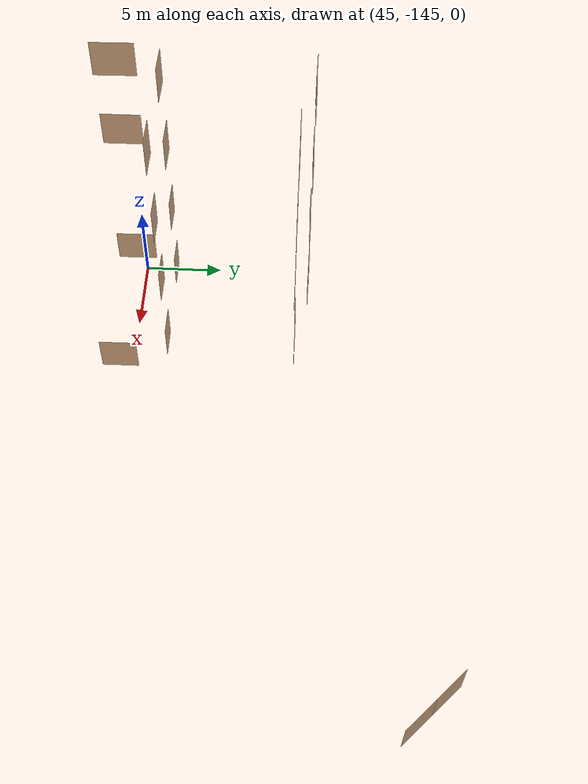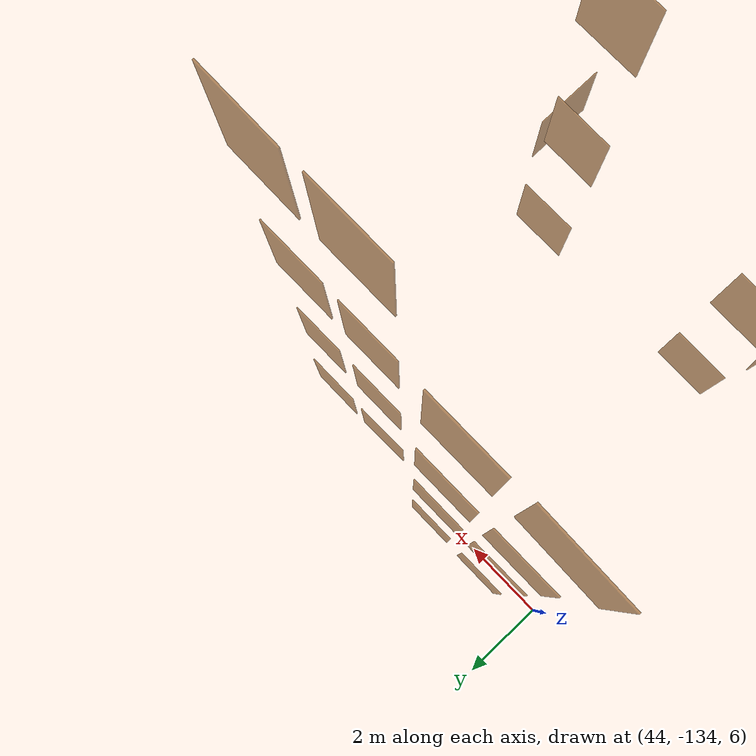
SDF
<sdf version="1.7">
 <world name="sim_world">
  <model name="puerta35">
   <pose>75.45357078933239 -127.21729013781993 0.0 0 0 -0.78246319415858</pose>
   <link name="right">
    <pose>1.1319642426576724 0 1.11 0 0 0</pose>
    <visual name="right_visual">
     <geometry><box><size>2.253928485315345 0.03 2.2</size></box></geometry>
     <material>
      <ambient>0.5 0.25 0 0.6</ambient>
      <diffuse>0.5 0.25 0 0.6</diffuse>
      <pbr><metal><metalness>0.0</metalness></metal></pbr>
     </material>
    </visual>
    <collision name="right_collision">
     <geometry><box><size>2.253928485315345 0.03 2.2</size></box></geometry>
     <surface><contact><collide_bitmask>0x02</collide_bitmask></contact></surface>
    </collision>
    <inertial>
     <mass>50.0</mass>
     <inertia><ixx>20.17041666666667</ixx><iyy>41.33414007048302</iyy><izz>21.171223403816356</izz></inertia>
    </inertial>
   </link>
   <joint name="right_joint" type="revolute">
    <parent>world</parent>
    <child>right</child>
    <axis><xyz>0 0 -1</xyz><limit><lower>0</lower><upper>1.57</upper></limit></axis>
    <pose>1.1319642426576724 0 0 0 0 0</pose>
   </joint>
   <link name="left">
    <pose>-1.1319642426576724 0 1.11 0 0 0</pose>
    <visual name="left_visual">
     <geometry><box><size>2.253928485315345 0.03 2.2</size></box></geometry>
     <material>
      <ambient>0.5 0.25 0 0.6</ambient>
      <diffuse>0.5 0.25 0 0.6</diffuse>
      <pbr><metal><metalness>0.0</metalness></metal></pbr>
     </material>
    </visual>
    <collision name="left_collision">
     <geometry><box><size>2.253928485315345 0.03 2.2</size></box></geometry>
     <surface><contact><collide_bitmask>0x02</collide_bitmask></contact></surface>
    </collision>
    <inertial>
     <mass>50.0</mass>
     <inertia><ixx>20.17041666666667</ixx><iyy>41.33414007048302</iyy><izz>21.171223403816356</izz></inertia>
    </inertial>
   </link>
   <joint name="left_joint" type="revolute">
    <parent>world</parent>
    <child>left</child>
    <axis><xyz>0 0 -1</xyz><limit><lower>-1.57</lower><upper>0</upper></limit></axis>
    <pose>-1.1319642426576724 0 0 0 0 0</pose>
   </joint>
   <plugin name="register_component" filename="libregister_component.so">
    <component name="Door">
     <v_max_door>0.5</v_max_door>
     <a_max_door>0.3</a_max_door>
     <a_nom_door>0.15</a_nom_door>
     <dx_min_door>0.01</dx_min_door>
     <f_max_door>500.0</f_max_door>
     <ros_interface>true</ros_interface>
     <door name="puerta35" type="DoubleSwingDoor" left_joint_name="left_joint" right_joint_name="right_joint"/>
    </component>
   </plugin>
  </model>
  <model name="puerta64">
   <pose>45.272078038303206 -133.9576695901199 0.0 0 0 0.00033642091717887694</pose>
   <link name="right">
    <pose>0 0 1.11 0 0 0</pose>
    <visual name="right_visual">
     <geometry><box><size>1.586098175162233 0.03 2.2</size></box></geometry>
     <material>
      <ambient>0.5 0.25 0 0.6</ambient>
      <diffuse>0.5 0.25 0 0.6</diffuse>
      <pbr><metal><metalness>0.0</metalness></metal></pbr>
     </material>
    </visual>
    <collision name="right_collision">
     <geometry><box><size>1.586098175162233 0.03 2.2</size></box></geometry>
     <surface><contact><collide_bitmask>0x02</collide_bitmask></contact></surface>
    </collision>
    <inertial>
     <mass>50.0</mass>
     <inertia><ixx>20.17041666666667</ixx><iyy>30.648780921887358</iyy><izz>10.48586425522069</izz></inertia>
    </inertial>
   </link>
   <joint name="right_joint" type="revolute">
    <parent>world</parent>
    <child>right</child>
    <axis><xyz>0 0 -1</xyz><limit><lower>0</lower><upper>1.57</upper></limit></axis>
    <pose>0.7980490875811165 0 0 0 0 0</pose>
   </joint>
   <plugin name="register_component" filename="libregister_component.so">
    <component name="Door">
     <v_max_door>0.5</v_max_door>
     <a_max_door>0.3</a_max_door>
     <a_nom_door>0.15</a_nom_door>
     <dx_min_door>0.01</dx_min_door>
     <f_max_door>500.0</f_max_door>
     <ros_interface>true</ros_interface>
     <door name="puerta64" type="SwingDoor" left_joint_name="empty_joint" right_joint_name="right_joint"/>
    </component>
   </plugin>
  </model>
  <model name="puerta65">
   <pose>47.3220690889565 -134.00293538571682 0.0 0 0 3.141592653589793</pose>
   <link name="right">
    <pose>0 0 1.11 0 0 0</pose>
    <visual name="right_visual">
     <geometry><box><size>1.5378790048326516 0.03 2.2</size></box></geometry>
     <material>
      <ambient>0.5 0.25 0 0.6</ambient>
      <diffuse>0.5 0.25 0 0.6</diffuse>
      <pbr><metal><metalness>0.0</metalness></metal></pbr>
     </material>
    </visual>
    <collision name="right_collision">
     <geometry><box><size>1.5378790048326516 0.03 2.2</size></box></geometry>
     <surface><contact><collide_bitmask>0x02</collide_bitmask></contact></surface>
    </collision>
    <inertial>
     <mass>50.0</mass>
     <inertia><ixx>20.17041666666667</ixx><iyy>30.021132639604453</iyy><izz>9.85821597293778</izz></inertia>
    </inertial>
   </link>
   <joint name="right_joint" type="revolute">
    <parent>world</parent>
    <child>right</child>
    <axis><xyz>0 0 1</xyz><limit><lower>0</lower><upper>1.57</upper></limit></axis>
    <pose>0.7739395024163258 0 0 0 0 0</pose>
   </joint>
   <plugin name="register_component" filename="libregister_component.so">
    <component name="Door">
     <v_max_door>0.5</v_max_door>
     <a_max_door>0.3</a_max_door>
     <a_nom_door>0.15</a_nom_door>
     <dx_min_door>0.01</dx_min_door>
     <f_max_door>500.0</f_max_door>
     <ros_interface>true</ros_interface>
     <door name="puerta65" type="SwingDoor" left_joint_name="empty_joint" right_joint_name="right_joint"/>
    </component>
   </plugin>
  </model>
  <model name="puerta66">
   <pose>50.14669769106855 -134.76991229640237 0.0 0 0 0.016072215014204645</pose>
   <link name="right">
    <pose>0 0 1.11 0 0 0</pose>
    <visual name="right_visual">
     <geometry><box><size>1.698400351786049 0.03 2.2</size></box></geometry>
     <material>
      <ambient>0.5 0.25 0 0.6</ambient>
      <diffuse>0.5 0.25 0 0.6</diffuse>
      <pbr><metal><metalness>0.0</metalness></metal></pbr>
     </material>
    </visual>
    <collision name="right_collision">
     <geometry><box><size>1.698400351786049 0.03 2.2</size></box></geometry>
     <surface><contact><collide_bitmask>0x02</collide_bitmask></contact></surface>
    </collision>
    <inertial>
     <mass>50.0</mass>
     <inertia><ixx>20.17041666666667</ixx><iyy>32.18568231227907</iyy><izz>12.022765645612397</izz></inertia>
    </inertial>
   </link>
   <joint name="right_joint" type="revolute">
    <parent>world</parent>
    <child>right</child>
    <axis><xyz>0 0 -1</xyz><limit><lower>0</lower><upper>1.57</upper></limit></axis>
    <pose>0.8542001758930245 0 0 0 0 0</pose>
   </joint>
   <plugin name="register_component" filename="libregister_component.so">
    <component name="Door">
     <v_max_door>0.5</v_max_door>
     <a_max_door>0.3</a_max_door>
     <a_nom_door>0.15</a_nom_door>
     <dx_min_door>0.01</dx_min_door>
     <f_max_door>500.0</f_max_door>
     <ros_interface>true</ros_interface>
     <door name="puerta66" type="SwingDoor" left_joint_name="empty_joint" right_joint_name="right_joint"/>
    </component>
   </plugin>
  </model>
  <model name="puerta67">
   <pose>52.17614104170396 -134.76599248254877 0.0 0 0 3.1392222238091176</pose>
   <link name="right">
    <pose>0 0 1.11 0 0 0</pose>
    <visual name="right_visual">
     <geometry><box><size>1.651182401063152 0.03 2.2</size></box></geometry>
     <material>
      <ambient>0.5 0.25 0 0.6</ambient>
      <diffuse>0.5 0.25 0 0.6</diffuse>
      <pbr><metal><metalness>0.0</metalness></metal></pbr>
     </material>
    </visual>
    <collision name="right_collision">
     <geometry><box><size>1.651182401063152 0.03 2.2</size></box></geometry>
     <surface><contact><collide_bitmask>0x02</collide_bitmask></contact></surface>
    </collision>
    <inertial>
     <mass>50.0</mass>
     <inertia><ixx>20.17041666666667</ixx><iyy>31.526680506586153</iyy><izz>11.363763839919484</izz></inertia>
    </inertial>
   </link>
   <joint name="right_joint" type="revolute">
    <parent>world</parent>
    <child>right</child>
    <axis><xyz>0 0 1</xyz><limit><lower>0</lower><upper>1.57</upper></limit></axis>
    <pose>0.830591200531576 0 0 0 0 0</pose>
   </joint>
   <plugin name="register_component" filename="libregister_component.so">
    <component name="Door">
     <v_max_door>0.5</v_max_door>
     <a_max_door>0.3</a_max_door>
     <a_nom_door>0.15</a_nom_door>
     <dx_min_door>0.01</dx_min_door>
     <f_max_door>500.0</f_max_door>
     <ros_interface>true</ros_interface>
     <door name="puerta67" type="SwingDoor" left_joint_name="empty_joint" right_joint_name="right_joint"/>
    </component>
   </plugin>
  </model>
  <model name="puerta68">
   <pose>45.33858958296044 -142.92470019688562 0.0 0 0 3.1356292719977623</pose>
   <link name="right">
    <pose>0 0 1.11 0 0 0</pose>
    <visual name="right_visual">
     <geometry><box><size>1.8569027137492566 0.03 2.2</size></box></geometry>
     <material>
      <ambient>0.5 0.25 0 0.6</ambient>
      <diffuse>0.5 0.25 0 0.6</diffuse>
      <pbr><metal><metalness>0.0</metalness></metal></pbr>
     </material>
    </visual>
    <collision name="right_collision">
     <geometry><box><size>1.8569027137492566 0.03 2.2</size></box></geometry>
     <surface><contact><collide_bitmask>0x02</collide_bitmask></contact></surface>
    </collision>
    <inertial>
     <mass>50.0</mass>
     <inertia><ixx>20.17041666666667</ixx><iyy>34.533698701372316</iyy><izz>14.370782034705641</izz></inertia>
    </inertial>
   </link>
   <joint name="right_joint" type="revolute">
    <parent>world</parent>
    <child>right</child>
    <axis><xyz>0 0 1</xyz><limit><lower>0</lower><upper>1.57</upper></limit></axis>
    <pose>0.9334513568746283 0 0 0 0 0</pose>
   </joint>
   <plugin name="register_component" filename="libregister_component.so">
    <component name="Door">
     <v_max_door>0.5</v_max_door>
     <a_max_door>0.3</a_max_door>
     <a_nom_door>0.15</a_nom_door>
     <dx_min_door>0.01</dx_min_door>
     <f_max_door>500.0</f_max_door>
     <ros_interface>true</ros_interface>
     <door name="puerta68" type="SwingDoor" left_joint_name="empty_joint" right_joint_name="right_joint"/>
    </component>
   </plugin>
  </model>
  <model name="puerta69">
   <pose>51.58738142115625 -142.89855020583497 0.0 0 0 0.0036707392017304758</pose>
   <link name="right">
    <pose>0 0 1.11 0 0 0</pose>
    <visual name="right_visual">
     <geometry><box><size>1.9014143451886736 0.03 2.2</size></box></geometry>
     <material>
      <ambient>0.5 0.25 0 0.6</ambient>
      <diffuse>0.5 0.25 0 0.6</diffuse>
      <pbr><metal><metalness>0.0</metalness></metal></pbr>
     </material>
    </visual>
    <collision name="right_collision">
     <geometry><box><size>1.9014143451886736 0.03 2.2</size></box></geometry>
     <surface><contact><collide_bitmask>0x02</collide_bitmask></contact></surface>
    </collision>
    <inertial>
     <mass>50.0</mass>
     <inertia><ixx>20.17041666666667</ixx><iyy>35.23073546703864</iyy><izz>15.067818800371969</izz></inertia>
    </inertial>
   </link>
   <joint name="right_joint" type="revolute">
    <parent>world</parent>
    <child>right</child>
    <axis><xyz>0 0 -1</xyz><limit><lower>0</lower><upper>1.57</upper></limit></axis>
    <pose>0.9557071725943368 0 0 0 0 0</pose>
   </joint>
   <plugin name="register_component" filename="libregister_component.so">
    <component name="Door">
     <v_max_door>0.5</v_max_door>
     <a_max_door>0.3</a_max_door>
     <a_nom_door>0.15</a_nom_door>
     <dx_min_door>0.01</dx_min_door>
     <f_max_door>500.0</f_max_door>
     <ros_interface>true</ros_interface>
     <door name="puerta69" type="SwingDoor" left_joint_name="empty_joint" right_joint_name="right_joint"/>
    </component>
   </plugin>
  </model>
  <model name="puerta70">
   <pose>43.95122606049759 -145.7981027385001 0.0 0 0 -1.5679712419783984</pose>
   <link name="right">
    <pose>0 0 1.11 0 0 0</pose>
    <visual name="right_visual">
     <geometry><box><size>2.587611940983955 0.03 2.2</size></box></geometry>
     <material>
      <ambient>0.5 0.25 0 0.6</ambient>
      <diffuse>0.5 0.25 0 0.6</diffuse>
      <pbr><metal><metalness>0.0</metalness></metal></pbr>
     </material>
    </visual>
    <collision name="right_collision">
     <geometry><box><size>2.587611940983955 0.03 2.2</size></box></geometry>
     <surface><contact><collide_bitmask>0x02</collide_bitmask></contact></surface>
    </collision>
    <inertial>
     <mass>50.0</mass>
     <inertia><ixx>20.17041666666667</ixx><iyy>48.06556482134481</iyy><izz>27.902648154678133</izz></inertia>
    </inertial>
   </link>
   <joint name="right_joint" type="revolute">
    <parent>world</parent>
    <child>right</child>
    <axis><xyz>0 0 -1</xyz><limit><lower>0</lower><upper>1.57</upper></limit></axis>
    <pose>1.2988059704919774 0 0 0 0 0</pose>
   </joint>
   <plugin name="register_component" filename="libregister_component.so">
    <component name="Door">
     <v_max_door>0.5</v_max_door>
     <a_max_door>0.3</a_max_door>
     <a_nom_door>0.15</a_nom_door>
     <dx_min_door>0.01</dx_min_door>
     <f_max_door>500.0</f_max_door>
     <ros_interface>true</ros_interface>
     <door name="puerta70" type="SwingDoor" left_joint_name="empty_joint" right_joint_name="right_joint"/>
    </component>
   </plugin>
  </model>
  <model name="puerta71">
   <pose>53.57064614283158 -145.77669590119922 0.0 0 0 -1.5707963267948966</pose>
   <link name="right">
    <pose>0 0 1.11 0 0 0</pose>
    <visual name="right_visual">
     <geometry><box><size>2.310529801324483 0.03 2.2</size></box></geometry>
     <material>
      <ambient>0.5 0.25 0 0.6</ambient>
      <diffuse>0.5 0.25 0 0.6</diffuse>
      <pbr><metal><metalness>0.0</metalness></metal></pbr>
     </material>
    </visual>
    <collision name="right_collision">
     <geometry><box><size>2.310529801324483 0.03 2.2</size></box></geometry>
     <surface><contact><collide_bitmask>0x02</collide_bitmask></contact></surface>
    </collision>
    <inertial>
     <mass>50.0</mass>
     <inertia><ixx>20.17041666666667</ixx><iyy>42.410616511702315</iyy><izz>22.247699845035644</izz></inertia>
    </inertial>
   </link>
   <joint name="right_joint" type="revolute">
    <parent>world</parent>
    <child>right</child>
    <axis><xyz>0 0 1</xyz><limit><lower>0</lower><upper>1.57</upper></limit></axis>
    <pose>1.1602649006622414 0 0 0 0 0</pose>
   </joint>
   <plugin name="register_component" filename="libregister_component.so">
    <component name="Door">
     <v_max_door>0.5</v_max_door>
     <a_max_door>0.3</a_max_door>
     <a_nom_door>0.15</a_nom_door>
     <dx_min_door>0.01</dx_min_door>
     <f_max_door>500.0</f_max_door>
     <ros_interface>true</ros_interface>
     <door name="puerta71" type="SwingDoor" left_joint_name="empty_joint" right_joint_name="right_joint"/>
    </component>
   </plugin>
  </model>
  <model name="puerta3172">
   <pose>45.30645285180824 -134.02937611803156 5.0 0 0 0.0072673819758315395</pose>
   <link name="right">
    <pose>0 0 1.11 0 0 0</pose>
    <visual name="right_visual">
     <geometry><box><size>1.696973804120758 0.03 2.2</size></box></geometry>
     <material>
      <ambient>0.5 0.25 0 0.6</ambient>
      <diffuse>0.5 0.25 0 0.6</diffuse>
      <pbr><metal><metalness>0.0</metalness></metal></pbr>
     </material>
    </visual>
    <collision name="right_collision">
     <geometry><box><size>1.696973804120758 0.03 2.2</size></box></geometry>
     <surface><contact><collide_bitmask>0x02</collide_bitmask></contact></surface>
    </collision>
    <inertial>
     <mass>50.0</mass>
     <inertia><ixx>20.17041666666667</ixx><iyy>32.165500382800325</iyy><izz>12.002583716133655</izz></inertia>
    </inertial>
   </link>
   <joint name="right_joint" type="revolute">
    <parent>world</parent>
    <child>right</child>
    <axis><xyz>0 0 -1</xyz><limit><lower>0</lower><upper>1.57</upper></limit></axis>
    <pose>0.853486902060379 0 0 0 0 0</pose>
   </joint>
   <plugin name="register_component" filename="libregister_component.so">
    <component name="Door">
     <v_max_door>0.5</v_max_door>
     <a_max_door>0.3</a_max_door>
     <a_nom_door>0.15</a_nom_door>
     <dx_min_door>0.01</dx_min_door>
     <f_max_door>500.0</f_max_door>
     <ros_interface>true</ros_interface>
     <door name="puerta3172" type="SwingDoor" left_joint_name="empty_joint" right_joint_name="right_joint"/>
    </component>
   </plugin>
  </model>
  <model name="puerta3173">
   <pose>47.30099610245035 -134.02316071505484 5.0 0 0 -3.141581399112619</pose>
   <link name="right">
    <pose>0 0 1.11 0 0 0</pose>
    <visual name="right_visual">
     <geometry><box><size>1.6103348832523563 0.03 2.2</size></box></geometry>
     <material>
      <ambient>0.5 0.25 0 0.6</ambient>
      <diffuse>0.5 0.25 0 0.6</diffuse>
      <pbr><metal><metalness>0.0</metalness></metal></pbr>
     </material>
    </visual>
    <collision name="right_collision">
     <geometry><box><size>1.6103348832523563 0.03 2.2</size></box></geometry>
     <surface><contact><collide_bitmask>0x02</collide_bitmask></contact></surface>
    </collision>
    <inertial>
     <mass>50.0</mass>
     <inertia><ixx>20.17041666666667</ixx><iyy>30.971576817580754</iyy><izz>10.808660150914084</izz></inertia>
    </inertial>
   </link>
   <joint name="right_joint" type="revolute">
    <parent>world</parent>
    <child>right</child>
    <axis><xyz>0 0 1</xyz><limit><lower>0</lower><upper>1.57</upper></limit></axis>
    <pose>0.8101674416261782 0 0 0 0 0</pose>
   </joint>
   <plugin name="register_component" filename="libregister_component.so">
    <component name="Door">
     <v_max_door>0.5</v_max_door>
     <a_max_door>0.3</a_max_door>
     <a_nom_door>0.15</a_nom_door>
     <dx_min_door>0.01</dx_min_door>
     <f_max_door>500.0</f_max_door>
     <ros_interface>true</ros_interface>
     <door name="puerta3173" type="SwingDoor" left_joint_name="empty_joint" right_joint_name="right_joint"/>
    </component>
   </plugin>
  </model>
  <model name="puerta3174">
   <pose>50.20417694442915 -134.84485805292428 5.0 0 0 1.1254477179191932e-05</pose>
   <link name="right">
    <pose>0 0 1.11 0 0 0</pose>
    <visual name="right_visual">
     <geometry><box><size>1.5970898340564539 0.03 2.2</size></box></geometry>
     <material>
      <ambient>0.5 0.25 0 0.6</ambient>
      <diffuse>0.5 0.25 0 0.6</diffuse>
      <pbr><metal><metalness>0.0</metalness></metal></pbr>
     </material>
    </visual>
    <collision name="right_collision">
     <geometry><box><size>1.5970898340564539 0.03 2.2</size></box></geometry>
     <surface><contact><collide_bitmask>0x02</collide_bitmask></contact></surface>
    </collision>
    <inertial>
     <mass>50.0</mass>
     <inertia><ixx>20.17041666666667</ixx><iyy>30.79456640852697</iyy><izz>10.631649741860299</izz></inertia>
    </inertial>
   </link>
   <joint name="right_joint" type="revolute">
    <parent>world</parent>
    <child>right</child>
    <axis><xyz>0 0 -1</xyz><limit><lower>0</lower><upper>1.57</upper></limit></axis>
    <pose>0.803544917028227 0 0 0 0 0</pose>
   </joint>
   <plugin name="register_component" filename="libregister_component.so">
    <component name="Door">
     <v_max_door>0.5</v_max_door>
     <a_max_door>0.3</a_max_door>
     <a_nom_door>0.15</a_nom_door>
     <dx_min_door>0.01</dx_min_door>
     <f_max_door>500.0</f_max_door>
     <ros_interface>true</ros_interface>
     <door name="puerta3174" type="SwingDoor" left_joint_name="empty_joint" right_joint_name="right_joint"/>
    </component>
   </plugin>
  </model>
  <model name="puerta3175">
   <pose>52.18101846008344 -134.84701944785246 5.0 0 0 -3.1415813991125994</pose>
   <link name="right">
    <pose>0 0 1.11 0 0 0</pose>
    <visual name="right_visual">
     <geometry><box><size>1.4567639074404055 0.03 2.2</size></box></geometry>
     <material>
      <ambient>0.5 0.25 0 0.6</ambient>
      <diffuse>0.5 0.25 0 0.6</diffuse>
      <pbr><metal><metalness>0.0</metalness></metal></pbr>
     </material>
    </visual>
    <collision name="right_collision">
     <geometry><box><size>1.4567639074404055 0.03 2.2</size></box></geometry>
     <surface><contact><collide_bitmask>0x02</collide_bitmask></contact></surface>
    </collision>
    <inertial>
     <mass>50.0</mass>
     <inertia><ixx>20.17041666666667</ixx><iyy>29.009004508420997</iyy><izz>8.846087841754327</izz></inertia>
    </inertial>
   </link>
   <joint name="right_joint" type="revolute">
    <parent>world</parent>
    <child>right</child>
    <axis><xyz>0 0 1</xyz><limit><lower>0</lower><upper>1.57</upper></limit></axis>
    <pose>0.7333819537202028 0 0 0 0 0</pose>
   </joint>
   <plugin name="register_component" filename="libregister_component.so">
    <component name="Door">
     <v_max_door>0.5</v_max_door>
     <a_max_door>0.3</a_max_door>
     <a_nom_door>0.15</a_nom_door>
     <dx_min_door>0.01</dx_min_door>
     <f_max_door>500.0</f_max_door>
     <ros_interface>true</ros_interface>
     <door name="puerta3175" type="SwingDoor" left_joint_name="empty_joint" right_joint_name="right_joint"/>
    </component>
   </plugin>
  </model>
  <model name="puerta3176">
   <pose>51.51298620789052 -142.93146492031025 5.0 0 0 -0.007849392734007664</pose>
   <link name="right">
    <pose>0 0 1.11 0 0 0</pose>
    <visual name="right_visual">
     <geometry><box><size>1.7615263646322423 0.03 2.2</size></box></geometry>
     <material>
      <ambient>0.5 0.25 0 0.6</ambient>
      <diffuse>0.5 0.25 0 0.6</diffuse>
      <pbr><metal><metalness>0.0</metalness></metal></pbr>
     </material>
    </visual>
    <collision name="right_collision">
     <geometry><box><size>1.7615263646322423 0.03 2.2</size></box></geometry>
     <surface><contact><collide_bitmask>0x02</collide_bitmask></contact></surface>
    </collision>
    <inertial>
     <mass>50.0</mass>
     <inertia><ixx>20.17041666666667</ixx><iyy>33.095729722060355</iyy><izz>12.932813055393684</izz></inertia>
    </inertial>
   </link>
   <joint name="right_joint" type="revolute">
    <parent>world</parent>
    <child>right</child>
    <axis><xyz>0 0 -1</xyz><limit><lower>0</lower><upper>1.57</upper></limit></axis>
    <pose>0.8857631823161212 0 0 0 0 0</pose>
   </joint>
   <plugin name="register_component" filename="libregister_component.so">
    <component name="Door">
     <v_max_door>0.5</v_max_door>
     <a_max_door>0.3</a_max_door>
     <a_nom_door>0.15</a_nom_door>
     <dx_min_door>0.01</dx_min_door>
     <f_max_door>500.0</f_max_door>
     <ros_interface>true</ros_interface>
     <door name="puerta3176" type="SwingDoor" left_joint_name="empty_joint" right_joint_name="right_joint"/>
    </component>
   </plugin>
  </model>
  <model name="puerta3177">
   <pose>45.385969458678034 -142.91542503306277 5.0 0 0 3.131635062764327</pose>
   <link name="right">
    <pose>0 0 1.11 0 0 0</pose>
    <visual name="right_visual">
     <geometry><box><size>1.8249958584669672 0.03 2.2</size></box></geometry>
     <material>
      <ambient>0.5 0.25 0 0.6</ambient>
      <diffuse>0.5 0.25 0 0.6</diffuse>
      <pbr><metal><metalness>0.0</metalness></metal></pbr>
     </material>
    </visual>
    <collision name="right_collision">
     <geometry><box><size>1.8249958584669672 0.03 2.2</size></box></geometry>
     <surface><contact><collide_bitmask>0x02</collide_bitmask></contact></surface>
    </collision>
    <inertial>
     <mass>50.0</mass>
     <inertia><ixx>20.17041666666667</ixx><iyy>34.04420784758994</iyy><izz>13.881291180923261</izz></inertia>
    </inertial>
   </link>
   <joint name="right_joint" type="revolute">
    <parent>world</parent>
    <child>right</child>
    <axis><xyz>0 0 1</xyz><limit><lower>0</lower><upper>1.57</upper></limit></axis>
    <pose>0.9174979292334836 0 0 0 0 0</pose>
   </joint>
   <plugin name="register_component" filename="libregister_component.so">
    <component name="Door">
     <v_max_door>0.5</v_max_door>
     <a_max_door>0.3</a_max_door>
     <a_nom_door>0.15</a_nom_door>
     <dx_min_door>0.01</dx_min_door>
     <f_max_door>500.0</f_max_door>
     <ros_interface>true</ros_interface>
     <door name="puerta3177" type="SwingDoor" left_joint_name="empty_joint" right_joint_name="right_joint"/>
    </component>
   </plugin>
  </model>
  <model name="puerta5269">
   <pose>45.37179979703026 -134.0077487803652 10.0 0 0 -4.69087708253122e-06</pose>
   <link name="right">
    <pose>0 0 1.11 0 0 0</pose>
    <visual name="right_visual">
     <geometry><box><size>1.6175740005361368 0.03 2.2</size></box></geometry>
     <material>
      <ambient>0.5 0.25 0 0.6</ambient>
      <diffuse>0.5 0.25 0 0.6</diffuse>
      <pbr><metal><metalness>0.0</metalness></metal></pbr>
     </material>
    </visual>
    <collision name="right_collision">
     <geometry><box><size>1.6175740005361368 0.03 2.2</size></box></geometry>
     <surface><contact><collide_bitmask>0x02</collide_bitmask></contact></surface>
    </collision>
    <inertial>
     <mass>50.0</mass>
     <inertia><ixx>20.17041666666667</ixx><iyy>31.068940196710347</iyy><izz>10.906023530043674</izz></inertia>
    </inertial>
   </link>
   <joint name="right_joint" type="revolute">
    <parent>world</parent>
    <child>right</child>
    <axis><xyz>0 0 -1</xyz><limit><lower>0</lower><upper>1.57</upper></limit></axis>
    <pose>0.8137870002680684 0 0 0 0 0</pose>
   </joint>
   <plugin name="register_component" filename="libregister_component.so">
    <component name="Door">
     <v_max_door>0.5</v_max_door>
     <a_max_door>0.3</a_max_door>
     <a_nom_door>0.15</a_nom_door>
     <dx_min_door>0.01</dx_min_door>
     <f_max_door>500.0</f_max_door>
     <ros_interface>true</ros_interface>
     <door name="puerta5269" type="SwingDoor" left_joint_name="empty_joint" right_joint_name="right_joint"/>
    </component>
   </plugin>
  </model>
  <model name="puerta5270">
   <pose>47.312181618614176 -134.0077578824578 10.0 0 0 3.1415879627127308</pose>
   <link name="right">
    <pose>0 0 1.11 0 0 0</pose>
    <visual name="right_visual">
     <geometry><box><size>1.5601403160636873 0.03 2.2</size></box></geometry>
     <material>
      <ambient>0.5 0.25 0 0.6</ambient>
      <diffuse>0.5 0.25 0 0.6</diffuse>
      <pbr><metal><metalness>0.0</metalness></metal></pbr>
     </material>
    </visual>
    <collision name="right_collision">
     <geometry><box><size>1.5601403160636873 0.03 2.2</size></box></geometry>
     <surface><contact><collide_bitmask>0x02</collide_bitmask></contact></surface>
    </collision>
    <inertial>
     <mass>50.0</mass>
     <inertia><ixx>20.17041666666667</ixx><iyy>30.308490857530433</iyy><izz>10.14557419086376</izz></inertia>
    </inertial>
   </link>
   <joint name="right_joint" type="revolute">
    <parent>world</parent>
    <child>right</child>
    <axis><xyz>0 0 1</xyz><limit><lower>0</lower><upper>1.57</upper></limit></axis>
    <pose>0.7850701580318437 0 0 0 0 0</pose>
   </joint>
   <plugin name="register_component" filename="libregister_component.so">
    <component name="Door">
     <v_max_door>0.5</v_max_door>
     <a_max_door>0.3</a_max_door>
     <a_nom_door>0.15</a_nom_door>
     <dx_min_door>0.01</dx_min_door>
     <f_max_door>500.0</f_max_door>
     <ros_interface>true</ros_interface>
     <door name="puerta5270" type="SwingDoor" left_joint_name="empty_joint" right_joint_name="right_joint"/>
    </component>
   </plugin>
  </model>
  <model name="puerta5271">
   <pose>50.18067712379158 -134.84390558830987 10.0 0 0 -4.690877070019565e-06</pose>
   <link name="right">
    <pose>0 0 1.11 0 0 0</pose>
    <visual name="right_visual">
     <geometry><box><size>1.5416756548875081 0.03 2.2</size></box></geometry>
     <material>
      <ambient>0.5 0.25 0 0.6</ambient>
      <diffuse>0.5 0.25 0 0.6</diffuse>
      <pbr><metal><metalness>0.0</metalness></metal></pbr>
     </material>
    </visual>
    <collision name="right_collision">
     <geometry><box><size>1.5416756548875081 0.03 2.2</size></box></geometry>
     <surface><contact><collide_bitmask>0x02</collide_bitmask></contact></surface>
    </collision>
    <inertial>
     <mass>50.0</mass>
     <inertia><ixx>20.17041666666667</ixx><iyy>30.069849270303454</iyy><izz>9.906932603636779</izz></inertia>
    </inertial>
   </link>
   <joint name="right_joint" type="revolute">
    <parent>world</parent>
    <child>right</child>
    <axis><xyz>0 0 -1</xyz><limit><lower>0</lower><upper>1.57</upper></limit></axis>
    <pose>0.7758378274437541 0 0 0 0 0</pose>
   </joint>
   <plugin name="register_component" filename="libregister_component.so">
    <component name="Door">
     <v_max_door>0.5</v_max_door>
     <a_max_door>0.3</a_max_door>
     <a_nom_door>0.15</a_nom_door>
     <dx_min_door>0.01</dx_min_door>
     <f_max_door>500.0</f_max_door>
     <ros_interface>true</ros_interface>
     <door name="puerta5271" type="SwingDoor" left_joint_name="empty_joint" right_joint_name="right_joint"/>
    </component>
   </plugin>
  </model>
  <model name="puerta5272">
   <pose>52.1746636695414 -134.85414923080225 10.0 0 0 3.141587962712735</pose>
   <link name="right">
    <pose>0 0 1.11 0 0 0</pose>
    <visual name="right_visual">
     <geometry><box><size>1.633462197362167 0.03 2.2</size></box></geometry>
     <material>
      <ambient>0.5 0.25 0 0.6</ambient>
      <diffuse>0.5 0.25 0 0.6</diffuse>
      <pbr><metal><metalness>0.0</metalness></metal></pbr>
     </material>
    </visual>
    <collision name="right_collision">
     <geometry><box><size>1.633462197362167 0.03 2.2</size></box></geometry>
     <surface><contact><collide_bitmask>0x02</collide_bitmask></contact></surface>
    </collision>
    <inertial>
     <mass>50.0</mass>
     <inertia><ixx>20.17041666666667</ixx><iyy>31.284161459213504</iyy><izz>11.12124479254683</izz></inertia>
    </inertial>
   </link>
   <joint name="right_joint" type="revolute">
    <parent>world</parent>
    <child>right</child>
    <axis><xyz>0 0 1</xyz><limit><lower>0</lower><upper>1.57</upper></limit></axis>
    <pose>0.8217310986810835 0 0 0 0 0</pose>
   </joint>
   <plugin name="register_component" filename="libregister_component.so">
    <component name="Door">
     <v_max_door>0.5</v_max_door>
     <a_max_door>0.3</a_max_door>
     <a_nom_door>0.15</a_nom_door>
     <dx_min_door>0.01</dx_min_door>
     <f_max_door>500.0</f_max_door>
     <ros_interface>true</ros_interface>
     <door name="puerta5272" type="SwingDoor" left_joint_name="empty_joint" right_joint_name="right_joint"/>
    </component>
   </plugin>
  </model>
  <model name="puerta5273">
   <pose>51.65387572350244 -142.95100806637964 10.0 0 0 -4.690877069380432e-06</pose>
   <link name="right">
    <pose>0 0 1.11 0 0 0</pose>
    <visual name="right_visual">
     <geometry><box><size>1.768332949247958 0.03 2.2</size></box></geometry>
     <material>
      <ambient>0.5 0.25 0 0.6</ambient>
      <diffuse>0.5 0.25 0 0.6</diffuse>
      <pbr><metal><metalness>0.0</metalness></metal></pbr>
     </material>
    </visual>
    <collision name="right_collision">
     <geometry><box><size>1.768332949247958 0.03 2.2</size></box></geometry>
     <surface><contact><collide_bitmask>0x02</collide_bitmask></contact></surface>
    </collision>
    <inertial>
     <mass>50.0</mass>
     <inertia><ixx>20.17041666666667</ixx><iyy>33.19583924748326</iyy><izz>13.03292258081659</izz></inertia>
    </inertial>
   </link>
   <joint name="right_joint" type="revolute">
    <parent>world</parent>
    <child>right</child>
    <axis><xyz>0 0 -1</xyz><limit><lower>0</lower><upper>1.57</upper></limit></axis>
    <pose>0.889166474623979 0 0 0 0 0</pose>
   </joint>
   <plugin name="register_component" filename="libregister_component.so">
    <component name="Door">
     <v_max_door>0.5</v_max_door>
     <a_max_door>0.3</a_max_door>
     <a_nom_door>0.15</a_nom_door>
     <dx_min_door>0.01</dx_min_door>
     <f_max_door>500.0</f_max_door>
     <ros_interface>true</ros_interface>
     <door name="puerta5273" type="SwingDoor" left_joint_name="empty_joint" right_joint_name="right_joint"/>
    </component>
   </plugin>
  </model>
  <model name="puerta5274">
   <pose>45.3243259779959 -142.9242117733795 10.0 0 0 3.133728121603427</pose>
   <link name="right">
    <pose>0 0 1.11 0 0 0</pose>
    <visual name="right_visual">
     <geometry><box><size>1.9204039729825946 0.03 2.2</size></box></geometry>
     <material>
      <ambient>0.5 0.25 0 0.6</ambient>
      <diffuse>0.5 0.25 0 0.6</diffuse>
      <pbr><metal><metalness>0.0</metalness></metal></pbr>
     </material>
    </visual>
    <collision name="right_collision">
     <geometry><box><size>1.9204039729825946 0.03 2.2</size></box></geometry>
     <surface><contact><collide_bitmask>0x02</collide_bitmask></contact></surface>
    </collision>
    <inertial>
     <mass>50.0</mass>
     <inertia><ixx>20.17041666666667</ixx><iyy>35.533130914363895</iyy><izz>15.370214247697225</izz></inertia>
    </inertial>
   </link>
   <joint name="right_joint" type="revolute">
    <parent>world</parent>
    <child>right</child>
    <axis><xyz>0 0 1</xyz><limit><lower>0</lower><upper>1.57</upper></limit></axis>
    <pose>0.9652019864912973 0 0 0 0 0</pose>
   </joint>
   <plugin name="register_component" filename="libregister_component.so">
    <component name="Door">
     <v_max_door>0.5</v_max_door>
     <a_max_door>0.3</a_max_door>
     <a_nom_door>0.15</a_nom_door>
     <dx_min_door>0.01</dx_min_door>
     <f_max_door>500.0</f_max_door>
     <ros_interface>true</ros_interface>
     <door name="puerta5274" type="SwingDoor" left_joint_name="empty_joint" right_joint_name="right_joint"/>
    </component>
   </plugin>
  </model>
  <model name="puerta5275">
   <pose>43.95154014901584 -145.78452806536433 10.0 0 0 -1.5739926027762892</pose>
   <link name="right">
    <pose>0 0 1.11 0 0 0</pose>
    <visual name="right_visual">
     <geometry><box><size>2.4902924649488223 0.03 2.2</size></box></geometry>
     <material>
      <ambient>0.5 0.25 0 0.6</ambient>
      <diffuse>0.5 0.25 0 0.6</diffuse>
      <pbr><metal><metalness>0.0</metalness></metal></pbr>
     </material>
    </visual>
    <collision name="right_collision">
     <geometry><box><size>2.4902924649488223 0.03 2.2</size></box></geometry>
     <surface><contact><collide_bitmask>0x02</collide_bitmask></contact></surface>
    </collision>
    <inertial>
     <mass>50.0</mass>
     <inertia><ixx>20.17041666666667</ixx><iyy>46.00648567075368</iyy><izz>25.843569004087005</izz></inertia>
    </inertial>
   </link>
   <joint name="right_joint" type="revolute">
    <parent>world</parent>
    <child>right</child>
    <axis><xyz>0 0 -1</xyz><limit><lower>0</lower><upper>1.57</upper></limit></axis>
    <pose>1.250146232474411 0 0 0 0 0</pose>
   </joint>
   <plugin name="register_component" filename="libregister_component.so">
    <component name="Door">
     <v_max_door>0.5</v_max_door>
     <a_max_door>0.3</a_max_door>
     <a_nom_door>0.15</a_nom_door>
     <dx_min_door>0.01</dx_min_door>
     <f_max_door>500.0</f_max_door>
     <ros_interface>true</ros_interface>
     <door name="puerta5275" type="SwingDoor" left_joint_name="empty_joint" right_joint_name="right_joint"/>
    </component>
   </plugin>
  </model>
  <model name="puerta7206">
   <pose>45.308835091581 -134.01721470809443 15.0 0 0 -0.02525960118052869</pose>
   <link name="right">
    <pose>0 0 1.11 0 0 0</pose>
    <visual name="right_visual">
     <geometry><box><size>1.711571718828228 0.03 2.2</size></box></geometry>
     <material>
      <ambient>0.5 0.25 0 0.6</ambient>
      <diffuse>0.5 0.25 0 0.6</diffuse>
      <pbr><metal><metalness>0.0</metalness></metal></pbr>
     </material>
    </visual>
    <collision name="right_collision">
     <geometry><box><size>1.711571718828228 0.03 2.2</size></box></geometry>
     <surface><contact><collide_bitmask>0x02</collide_bitmask></contact></surface>
    </collision>
    <inertial>
     <mass>50.0</mass>
     <inertia><ixx>20.17041666666667</ixx><iyy>32.3728239528859</iyy><izz>12.20990728621923</izz></inertia>
    </inertial>
   </link>
   <joint name="right_joint" type="revolute">
    <parent>world</parent>
    <child>right</child>
    <axis><xyz>0 0 -1</xyz><limit><lower>0</lower><upper>1.57</upper></limit></axis>
    <pose>0.860785859414114 0 0 0 0 0</pose>
   </joint>
   <plugin name="register_component" filename="libregister_component.so">
    <component name="Door">
     <v_max_door>0.5</v_max_door>
     <a_max_door>0.3</a_max_door>
     <a_nom_door>0.15</a_nom_door>
     <dx_min_door>0.01</dx_min_door>
     <f_max_door>500.0</f_max_door>
     <ros_interface>true</ros_interface>
     <door name="puerta7206" type="SwingDoor" left_joint_name="empty_joint" right_joint_name="right_joint"/>
    </component>
   </plugin>
  </model>
  <model name="puerta7207">
   <pose>47.30049721707918 -134.01769728004933 15.0 0 0 3.141552672686587</pose>
   <link name="right">
    <pose>0 0 1.11 0 0 0</pose>
    <visual name="right_visual">
     <geometry><box><size>1.4513184149801324 0.03 2.2</size></box></geometry>
     <material>
      <ambient>0.5 0.25 0 0.6</ambient>
      <diffuse>0.5 0.25 0 0.6</diffuse>
      <pbr><metal><metalness>0.0</metalness></metal></pbr>
     </material>
    </visual>
    <collision name="right_collision">
     <geometry><box><size>1.4513184149801324 0.03 2.2</size></box></geometry>
     <surface><contact><collide_bitmask>0x02</collide_bitmask></contact></surface>
    </collision>
    <inertial>
     <mass>50.0</mass>
     <inertia><ixx>20.17041666666667</ixx><iyy>28.94302142358519</iyy><izz>8.780104756918517</izz></inertia>
    </inertial>
   </link>
   <joint name="right_joint" type="revolute">
    <parent>world</parent>
    <child>right</child>
    <axis><xyz>0 0 1</xyz><limit><lower>0</lower><upper>1.57</upper></limit></axis>
    <pose>0.7306592074900662 0 0 0 0 0</pose>
   </joint>
   <plugin name="register_component" filename="libregister_component.so">
    <component name="Door">
     <v_max_door>0.5</v_max_door>
     <a_max_door>0.3</a_max_door>
     <a_nom_door>0.15</a_nom_door>
     <dx_min_door>0.01</dx_min_door>
     <f_max_door>500.0</f_max_door>
     <ros_interface>true</ros_interface>
     <door name="puerta7207" type="SwingDoor" left_joint_name="empty_joint" right_joint_name="right_joint"/>
    </component>
   </plugin>
  </model>
  <model name="puerta7208">
   <pose>50.186433815897075 -134.8274487972963 15.0 0 0 -3.9980903211953905e-05</pose>
   <link name="right">
    <pose>0 0 1.11 0 0 0</pose>
    <visual name="right_visual">
     <geometry><box><size>1.5936100296934568 0.03 2.2</size></box></geometry>
     <material>
      <ambient>0.5 0.25 0 0.6</ambient>
      <diffuse>0.5 0.25 0 0.6</diffuse>
      <pbr><metal><metalness>0.0</metalness></metal></pbr>
     </material>
    </visual>
    <collision name="right_collision">
     <geometry><box><size>1.5936100296934568 0.03 2.2</size></box></geometry>
     <surface><contact><collide_bitmask>0x02</collide_bitmask></contact></surface>
    </collision>
    <inertial>
     <mass>50.0</mass>
     <inertia><ixx>20.17041666666667</ixx><iyy>30.74830386141492</iyy><izz>10.585387194748252</izz></inertia>
    </inertial>
   </link>
   <joint name="right_joint" type="revolute">
    <parent>world</parent>
    <child>right</child>
    <axis><xyz>0 0 -1</xyz><limit><lower>0</lower><upper>1.57</upper></limit></axis>
    <pose>0.8018050148467284 0 0 0 0 0</pose>
   </joint>
   <plugin name="register_component" filename="libregister_component.so">
    <component name="Door">
     <v_max_door>0.5</v_max_door>
     <a_max_door>0.3</a_max_door>
     <a_nom_door>0.15</a_nom_door>
     <dx_min_door>0.01</dx_min_door>
     <f_max_door>500.0</f_max_door>
     <ros_interface>true</ros_interface>
     <door name="puerta7208" type="SwingDoor" left_joint_name="empty_joint" right_joint_name="right_joint"/>
    </component>
   </plugin>
  </model>
  <model name="puerta7209">
   <pose>52.19190107317304 -134.829508656644 15.0 0 0 3.1300715895854667</pose>
   <link name="right">
    <pose>0 0 1.11 0 0 0</pose>
    <visual name="right_visual">
     <geometry><box><size>1.5800497843965655 0.03 2.2</size></box></geometry>
     <material>
      <ambient>0.5 0.25 0 0.6</ambient>
      <diffuse>0.5 0.25 0 0.6</diffuse>
      <pbr><metal><metalness>0.0</metalness></metal></pbr>
     </material>
    </visual>
    <collision name="right_collision">
     <geometry><box><size>1.5800497843965655 0.03 2.2</size></box></geometry>
     <surface><contact><collide_bitmask>0x02</collide_bitmask></contact></surface>
    </collision>
    <inertial>
     <mass>50.0</mass>
     <inertia><ixx>20.17041666666667</ixx><iyy>30.568988838215144</iyy><izz>10.406072171548471</izz></inertia>
    </inertial>
   </link>
   <joint name="right_joint" type="revolute">
    <parent>world</parent>
    <child>right</child>
    <axis><xyz>0 0 1</xyz><limit><lower>0</lower><upper>1.57</upper></limit></axis>
    <pose>0.7950248921982828 0 0 0 0 0</pose>
   </joint>
   <plugin name="register_component" filename="libregister_component.so">
    <component name="Door">
     <v_max_door>0.5</v_max_door>
     <a_max_door>0.3</a_max_door>
     <a_nom_door>0.15</a_nom_door>
     <dx_min_door>0.01</dx_min_door>
     <f_max_door>500.0</f_max_door>
     <ros_interface>true</ros_interface>
     <door name="puerta7209" type="SwingDoor" left_joint_name="empty_joint" right_joint_name="right_joint"/>
    </component>
   </plugin>
  </model>
  <model name="puerta7210">
   <pose>51.63966667650046 -142.94415557728104 15.0 0 0 -3.998090321440105e-05</pose>
   <link name="right">
    <pose>0 0 1.11 0 0 0</pose>
    <visual name="right_visual">
     <geometry><box><size>1.817681656409 0.03 2.2</size></box></geometry>
     <material>
      <ambient>0.5 0.25 0 0.6</ambient>
      <diffuse>0.5 0.25 0 0.6</diffuse>
      <pbr><metal><metalness>0.0</metalness></metal></pbr>
     </material>
    </visual>
    <collision name="right_collision">
     <geometry><box><size>1.817681656409 0.03 2.2</size></box></geometry>
     <surface><contact><collide_bitmask>0x02</collide_bitmask></contact></surface>
    </collision>
    <inertial>
     <mass>50.0</mass>
     <inertia><ixx>20.17041666666667</ixx><iyy>33.93319418352403</iyy><izz>13.770277516857359</izz></inertia>
    </inertial>
   </link>
   <joint name="right_joint" type="revolute">
    <parent>world</parent>
    <child>right</child>
    <axis><xyz>0 0 -1</xyz><limit><lower>0</lower><upper>1.57</upper></limit></axis>
    <pose>0.9138408282045 0 0 0 0 0</pose>
   </joint>
   <plugin name="register_component" filename="libregister_component.so">
    <component name="Door">
     <v_max_door>0.5</v_max_door>
     <a_max_door>0.3</a_max_door>
     <a_nom_door>0.15</a_nom_door>
     <dx_min_door>0.01</dx_min_door>
     <f_max_door>500.0</f_max_door>
     <ros_interface>true</ros_interface>
     <door name="puerta7210" type="SwingDoor" left_joint_name="empty_joint" right_joint_name="right_joint"/>
    </component>
   </plugin>
  </model>
  <model name="puerta7211">
   <pose>45.353292021838925 -142.95636045240857 15.0 0 0 3.1316186340666716</pose>
   <link name="right">
    <pose>0 0 1.11 0 0 0</pose>
    <visual name="right_visual">
     <geometry><box><size>1.9546392329967646 0.03 2.2</size></box></geometry>
     <material>
      <ambient>0.5 0.25 0 0.6</ambient>
      <diffuse>0.5 0.25 0 0.6</diffuse>
      <pbr><metal><metalness>0.0</metalness></metal></pbr>
     </material>
    </visual>
    <collision name="right_collision">
     <geometry><box><size>1.9546392329967646 0.03 2.2</size></box></geometry>
     <surface><contact><collide_bitmask>0x02</collide_bitmask></contact></surface>
    </collision>
    <inertial>
     <mass>50.0</mass>
     <inertia><ixx>20.17041666666667</ixx><iyy>36.085893879875755</iyy><izz>15.922977213209085</izz></inertia>
    </inertial>
   </link>
   <joint name="right_joint" type="revolute">
    <parent>world</parent>
    <child>right</child>
    <axis><xyz>0 0 1</xyz><limit><lower>0</lower><upper>1.57</upper></limit></axis>
    <pose>0.9823196164983823 0 0 0 0 0</pose>
   </joint>
   <plugin name="register_component" filename="libregister_component.so">
    <component name="Door">
     <v_max_door>0.5</v_max_door>
     <a_max_door>0.3</a_max_door>
     <a_nom_door>0.15</a_nom_door>
     <dx_min_door>0.01</dx_min_door>
     <f_max_door>500.0</f_max_door>
     <ros_interface>true</ros_interface>
     <door name="puerta7211" type="SwingDoor" left_joint_name="empty_joint" right_joint_name="right_joint"/>
    </component>
   </plugin>
  </model>
  <model name="puerta7212">
   <pose>43.926408711323674 -145.78070961801296 15.0 0 0 -1.5593865292218827</pose>
   <link name="right">
    <pose>0 0 1.11 0 0 0</pose>
    <visual name="right_visual">
     <geometry><box><size>2.5912233802925004 0.03 2.2</size></box></geometry>
     <material>
      <ambient>0.5 0.25 0 0.6</ambient>
      <diffuse>0.5 0.25 0 0.6</diffuse>
      <pbr><metal><metalness>0.0</metalness></metal></pbr>
     </material>
    </visual>
    <collision name="right_collision">
     <geometry><box><size>2.5912233802925004 0.03 2.2</size></box></geometry>
     <surface><contact><collide_bitmask>0x02</collide_bitmask></contact></surface>
    </collision>
    <inertial>
     <mass>50.0</mass>
     <inertia><ixx>20.17041666666667</ixx><iyy>48.14349419406039</iyy><izz>27.98057752739372</izz></inertia>
    </inertial>
   </link>
   <joint name="right_joint" type="revolute">
    <parent>world</parent>
    <child>right</child>
    <axis><xyz>0 0 -1</xyz><limit><lower>0</lower><upper>1.57</upper></limit></axis>
    <pose>1.30061169014625 0 0 0 0 0</pose>
   </joint>
   <plugin name="register_component" filename="libregister_component.so">
    <component name="Door">
     <v_max_door>0.5</v_max_door>
     <a_max_door>0.3</a_max_door>
     <a_nom_door>0.15</a_nom_door>
     <dx_min_door>0.01</dx_min_door>
     <f_max_door>500.0</f_max_door>
     <ros_interface>true</ros_interface>
     <door name="puerta7212" type="SwingDoor" left_joint_name="empty_joint" right_joint_name="right_joint"/>
    </component>
   </plugin>
  </model>
 </world>
</sdf>
